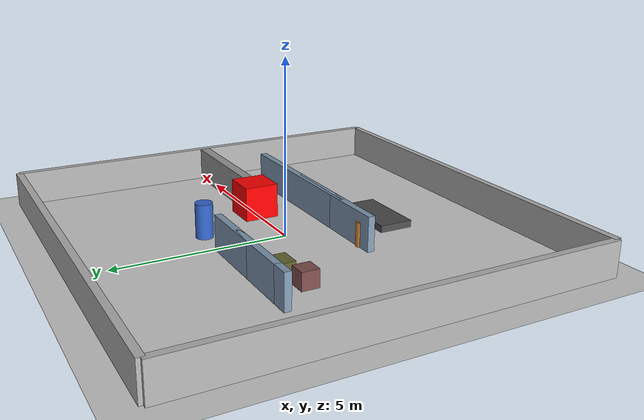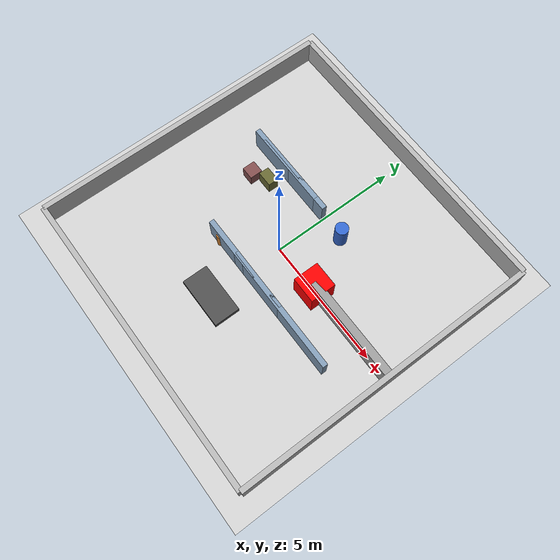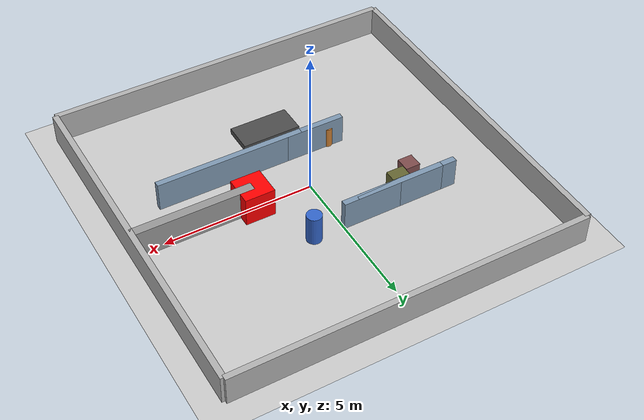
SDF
<?xml version="1.0"?>
<sdf version="1.7">
  <world name="lidar_test_world">

    <physics name="1ms" type="ignored">
      <max_step_size>0.001</max_step_size>
      <real_time_factor>1.0</real_time_factor>
    </physics>

    <plugin filename="gz-sim-physics-system" name="gz::sim::systems::Physics"></plugin>
    <plugin filename="gz-sim-user-commands-system" name="gz::sim::systems::UserCommands"></plugin>
    <plugin filename="gz-sim-scene-broadcaster-system" name="gz::sim::systems::SceneBroadcaster"></plugin>

    <plugin filename="gz-sim-sensors-system" name="gz::sim::systems::Sensors">
      <render_engine>ogre2</render_engine>
    </plugin>

    <gui fullscreen="0">

      <plugin filename="GzScene3D" name="3D View">
        <gz-gui>
          <title>3D View</title>
          <property type="string" key="state">docked</property>
        </gz-gui>
        <engine>ogre2</engine>
        <scene>scene</scene>
        <ambient_light>0.4 0.4 0.4</ambient_light>
        <background_color>0.8 0.8 0.8</background_color>
        <camera_pose>-2 0 2 0 0.5 0</camera_pose>
      </plugin>

      <plugin filename="VisualizeLidar" name="Visualize Lidar">
      </plugin>

      <plugin filename="TransformControl" name="Transform control"/>

      <plugin filename="WorldControl" name="World control"/>
      <plugin filename="WorldStats" name="World stats"/>
      <plugin filename="EntityContextMenuPlugin" name="Entity context menu"/>
    </gui>

    <light type="directional" name="sun">
      <cast_shadows>true</cast_shadows>
      <pose>0 0 10 0 0 0</pose>
      <diffuse>0.8 0.8 0.8 1</diffuse>
      <specular>0.2 0.2 0.2 1</specular>
      <attenuation>
        <range>1000</range>
        <constant>0.9</constant>
        <linear>0.01</linear>
        <quadratic>0.001</quadratic>
      </attenuation>
      <direction>-0.5 0.1 -0.9</direction>
    </light>

    <model name="ground_plane">
      <static>true</static>
      <link name="link">
        <collision name="collision">
          <geometry>
            <plane>
              <normal>0 0 1</normal>
              <size>100 100</size>
            </plane>
          </geometry>
        </collision>
        <visual name="visual">
          <geometry>
            <plane>
              <normal>0 0 1</normal>
              <size>100 100</size>
            </plane>
          </geometry>
          <material>
            <ambient>0.8 0.8 0.8 1</ambient>
            <diffuse>0.8 0.8 0.8 1</diffuse>
            <specular>0.8 0.8 0.8 1</specular>
          </material>
        </visual>
      </link>
    </model>

    <!-- 미로형 벽 배치로 피쳐 추가 -->
    <model name="maze_walls">
      <static>true</static>
      <pose>0 0 0 0 0 0</pose>
      <link name="segment_north">
        <pose>0 6 0.5 0 0 0</pose>
        <collision name="collision">
          <geometry><box><size>12 0.2 1.0</size></box></geometry>
        </collision>
        <visual name="visual">
          <geometry><box><size>12 0.2 1.0</size></box></geometry>
          <material><ambient>0.7 0.7 0.7 1</ambient><diffuse>0.7 0.7 0.7 1</diffuse></material>
        </visual>
      </link>
      <link name="segment_south">
        <pose>0 -6 0.5 0 0 0</pose>
        <collision name="collision">
          <geometry><box><size>12 0.2 1.0</size></box></geometry>
        </collision>
        <visual name="visual">
          <geometry><box><size>12 0.2 1.0</size></box></geometry>
          <material><ambient>0.7 0.7 0.7 1</ambient><diffuse>0.7 0.7 0.7 1</diffuse></material>
        </visual>
      </link>
      <link name="segment_west">
        <pose>-6 0 0.5 0 0 0</pose>
        <collision name="collision">
          <geometry><box><size>0.2 12 1.0</size></box></geometry>
        </collision>
        <visual name="visual">
          <geometry><box><size>0.2 12 1.0</size></box></geometry>
          <material><ambient>0.7 0.7 0.7 1</ambient><diffuse>0.7 0.7 0.7 1</diffuse></material>
        </visual>
      </link>
      <link name="segment_east">
        <pose>6 0 0.5 0 0 0</pose>
        <collision name="collision">
          <geometry><box><size>0.2 12 1.0</size></box></geometry>
        </collision>
        <visual name="visual">
          <geometry><box><size>0.2 12 1.0</size></box></geometry>
          <material><ambient>0.7 0.7 0.7 1</ambient><diffuse>0.7 0.7 0.7 1</diffuse></material>
        </visual>
      </link>
      <link name="inner_L1">
        <pose>-2 2 0.5 0 0 0</pose>
        <collision name="collision">
          <geometry><box><size>4 0.2 1.0</size></box></geometry>
        </collision>
        <visual name="visual">
          <geometry><box><size>4 0.2 1.0</size></box></geometry>
          <material><ambient>0.5 0.6 0.7 1</ambient><diffuse>0.5 0.6 0.7 1</diffuse></material>
        </visual>
      </link>
      <link name="inner_L2">
        <pose>-2 2 0.5 0 0 1.5707</pose>
        <collision name="collision">
          <geometry><box><size>0.2 3 1.0</size></box></geometry>
        </collision>
        <visual name="visual">
          <geometry><box><size>0.2 3 1.0</size></box></geometry>
          <material><ambient>0.5 0.6 0.7 1</ambient><diffuse>0.5 0.6 0.7 1</diffuse></material>
        </visual>
      </link>
      <link name="inner_corridor1">
        <pose>2 -1.5 0.5 0 0 0</pose>
        <collision name="collision">
          <geometry><box><size>5 0.2 1.0</size></box></geometry>
        </collision>
        <visual name="visual">
          <geometry><box><size>5 0.2 1.0</size></box></geometry>
          <material><ambient>0.5 0.6 0.7 1</ambient><diffuse>0.5 0.6 0.7 1</diffuse></material>
        </visual>
      </link>
      <link name="inner_corridor2">
        <pose>0 -1.5 0.5 0 0 1.5707</pose>
        <collision name="collision">
          <geometry><box><size>0.2 4 1.0</size></box></geometry>
        </collision>
        <visual name="visual">
          <geometry><box><size>0.2 4 1.0</size></box></geometry>
          <material><ambient>0.5 0.6 0.7 1</ambient><diffuse>0.5 0.6 0.7 1</diffuse></material>
        </visual>
      </link>
    </model>

    <model name="test_box">
      <pose>2 0 0.5 0 0 0</pose>
      <static>false</static>
      <link name="link">
        <gravity>false</gravity>
        <inertial>
          <mass>1.0</mass>
          <inertia>
            <ixx>0.166</ixx> <ixy>0</ixy> <ixz>0</ixz>
            <iyy>0.166</iyy> <iyz>0</iyz> <izz>0.166</izz>
          </inertia>
        </inertial>
        <collision name="collision">
          <geometry>
            <box> <size>1 1 1</size> </box>
          </geometry>
        </collision>
        <visual name="visual">
          <geometry>
            <box> <size>1 1 1</size> </box>
          </geometry>
          <material>
            <ambient>1 0 0 1</ambient>
            <diffuse>1 0 0 1</diffuse>
          </material>
        </visual>
      </link>
    </model>

    <!-- 추가 장애물들 -->
    <model name="wall_strip">
      <pose>4 0 0.5 0 0 0</pose>
      <static>true</static>
      <link name="link">
        <collision name="collision">
          <geometry>
            <box><size>4 0.3 1</size></box>
          </geometry>
        </collision>
        <visual name="visual">
          <geometry>
            <box><size>4 0.3 1</size></box>
          </geometry>
          <material>
            <ambient>0.6 0.6 0.6 1</ambient>
            <diffuse>0.6 0.6 0.6 1</diffuse>
          </material>
        </visual>
      </link>
    </model>

    <model name="pillar_1">
      <pose>1.0 2.0 0.5 0 0 0</pose>
      <static>true</static>
      <link name="link">
        <collision name="collision">
          <geometry>
            <cylinder><radius>0.25</radius><length>1.0</length></cylinder>
          </geometry>
        </collision>
        <visual name="visual">
          <geometry>
            <cylinder><radius>0.25</radius><length>1.0</length></cylinder>
          </geometry>
          <material>
            <ambient>0.2 0.4 0.8 1</ambient>
            <diffuse>0.2 0.4 0.8 1</diffuse>
          </material>
        </visual>
      </link>
    </model>

    <model name="pillar_2">
      <pose>-1.5 -1.5 0.35 0 0 0</pose>
      <static>true</static>
      <link name="link">
        <collision name="collision">
          <geometry>
            <cylinder><radius>0.15</radius><length>0.7</length></cylinder>
          </geometry>
        </collision>
        <visual name="visual">
          <geometry>
            <cylinder><radius>0.15</radius><length>0.7</length></cylinder>
          </geometry>
          <material>
            <ambient>0.8 0.5 0.2 1</ambient>
            <diffuse>0.8 0.5 0.2 1</diffuse>
          </material>
        </visual>
      </link>
    </model>

    <model name="crate_cluster">
      <pose>-3 1 0.25 0 0 0</pose>
      <static>false</static>
      <link name="crate_1">
        <collision name="collision">
          <geometry><box><size>0.5 0.5 0.5</size></box></geometry>
        </collision>
        <visual name="visual">
          <geometry><box><size>0.5 0.5 0.5</size></box></geometry>
          <material><ambient>0.5 0.3 0.3 1</ambient><diffuse>0.5 0.3 0.3 1</diffuse></material>
        </visual>
      </link>
      <link name="crate_2">
        <pose>0.6 0.3 0 0 0 0</pose>
        <collision name="collision">
          <geometry><box><size>0.6 0.4 0.6</size></box></geometry>
        </collision>
        <visual name="visual">
          <geometry><box><size>0.6 0.4 0.6</size></box></geometry>
          <material><ambient>0.4 0.4 0.2 1</ambient><diffuse>0.4 0.4 0.2 1</diffuse></material>
        </visual>
      </link>
    </model>

    <model name="ramp">
      <pose>0 -3 0.1 0 0 0</pose>
      <static>true</static>
      <link name="link">
        <collision name="collision">
          <geometry>
            <box><size>2 1 0.2</size></box>
          </geometry>
        </collision>
        <visual name="visual">
          <geometry>
            <box><size>2 1 0.2</size></box>
          </geometry>
          <material>
            <ambient>0.3 0.3 0.3 1</ambient>
            <diffuse>0.3 0.3 0.3 1</diffuse>
          </material>
        </visual>
      </link>
    </model>

    <physics type="ode">
      <ode>
        <solver>
          <type>quick</type>
          <iters>50</iters>
          <sor>1.0</sor>
        </solver>
        <constraints>
          <cfm>0.0</cfm>
          <erp>0.2</erp>
          <contact_max_correcting_vel>200</contact_max_correcting_vel>
          <contact_surface_layer>0.001</contact_surface_layer>
        </constraints>
      </ode>
      <max_step_size>0.001</max_step_size>
      <real_time_update_rate>0</real_time_update_rate>
    </physics>

  </world>
</sdf>
